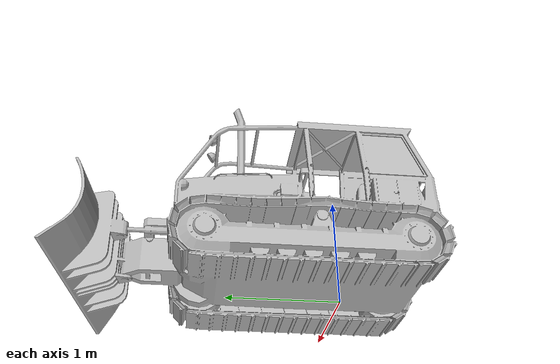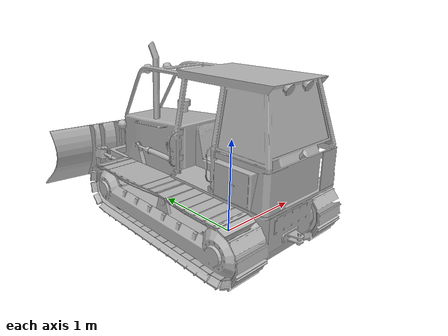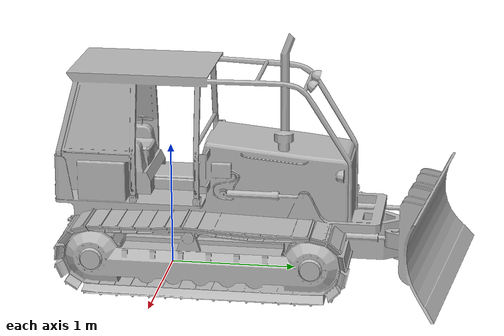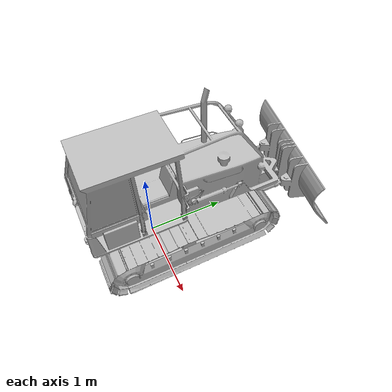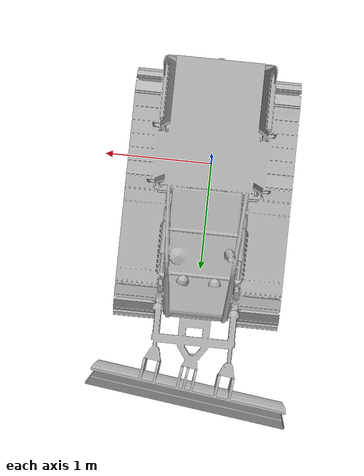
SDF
<?xml version="1.0" ?>
<sdf version="1.4">
	<model name="bulldozer">
		<static>true</static>
		<link name="link">
			<pose>0 0 0 0 0 0</pose>
			<collision name="collision">
				<geometry>
					<mesh>
						<uri>model://bulldozer/mesh/bulldozer.dae</uri>
						<scale>0.02 0.02 0.02</scale>
					</mesh>
				</geometry>
				<surface>
					<bounce>
						<restitution_coefficient>0.01</restitution_coefficient>
						<threshold>5.0</threshold>
					</bounce>
					<friction>
						<ode>
							<mu>10</mu>
							<mu2>10</mu2>
						</ode>
					</friction>
					<contact>
						<ode>
							<soft_cfm>0.001</soft_cfm>
							<kp>100000.0</kp>
							<kd>1000.0</kd>
						</ode>
					</contact>
				</surface>
			</collision>
			<visual name="visual">
				<geometry>
					<mesh>
						<uri>model://bulldozer/mesh/bulldozer.dae</uri>
						<scale>0.02 0.02 0.02</scale>
					</mesh>
				</geometry>
			</visual>
		</link>
	</model>
</sdf>
